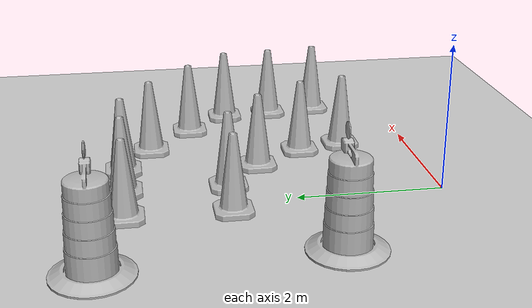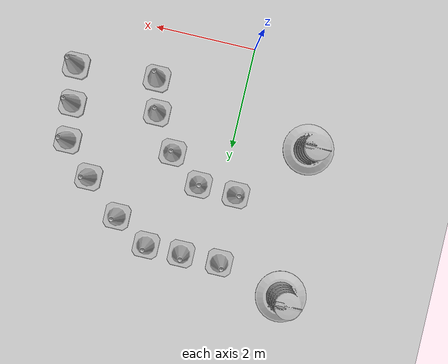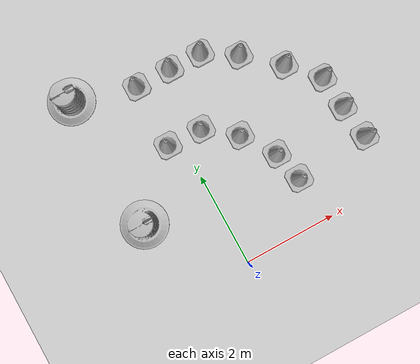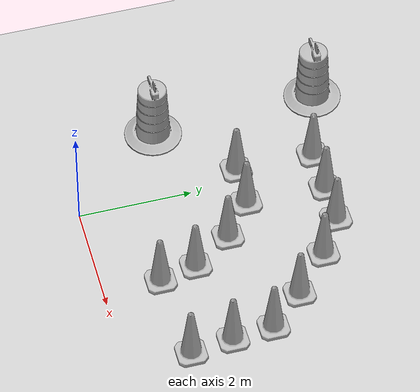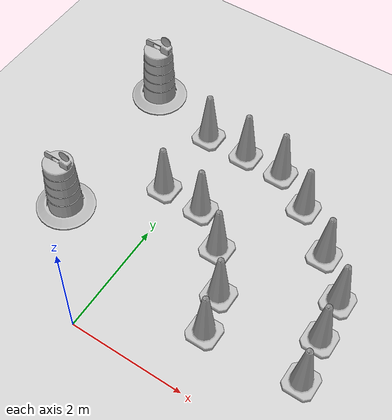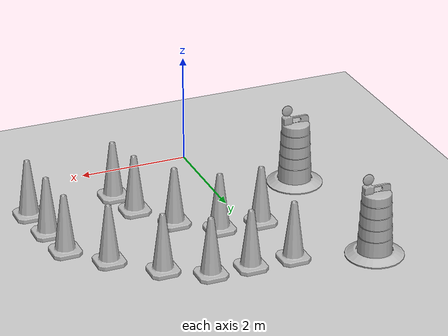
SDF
<sdf version="1.7">
 <world name="default">
  <light name="sun" type="directional">
   <pose>0 0 10 0 -0 0</pose>
   <diffuse>0.8 0.8 0.8 1</diffuse>
   <specular>0.2 0.2 0.2 1</specular>
   <attenuation>
    <range>1000</range>
    <constant>0.9</constant>
    <linear>0.01</linear>
    <quadratic>0.001</quadratic>
   </attenuation>
   <direction>-0.5 0.1 -0.9</direction>
   <spot><inner_angle>0</inner_angle><outer_angle>0</outer_angle><falloff>0</falloff></spot>
  </light>
  <model name="ground_plane">
   <static>1</static>
   <link name="link">
    <collision name="collision">
     <geometry><plane><normal>0 0 1</normal><size>100 100</size></plane></geometry>
     <surface>
      <contact><collide_bitmask>65535</collide_bitmask></contact>
      <friction><ode><mu>100</mu><mu2>50</mu2></ode></friction>
     </surface>
    </collision>
    <visual name="visual">
     <cast_shadows>0</cast_shadows>
     <geometry><plane><normal>0 0 1</normal><size>100 100</size></plane></geometry>
     <material>
      <script><uri>file://media/materials/scripts/gazebo.material</uri><name>Gazebo/Grey</name></script>
     </material>
    </visual>
   </link>
  </model>
  <gravity>0 0 -9.8</gravity>
  <magnetic_field>6e-06 2.3e-05 -4.2e-05</magnetic_field>
  <atmosphere type="adiabatic"/>
  <physics type="ode">
   <max_step_size>0.001</max_step_size>
   <real_time_factor>1</real_time_factor>
   <real_time_update_rate>1000</real_time_update_rate>
  </physics>
  <scene><ambient>0.4 0.4 0.4 1</ambient><background>0.7 0.7 0.7 1</background><shadows>1</shadows></scene>
  <audio><device>default</device></audio>
  <spherical_coordinates>
   <surface_model>EARTH_WGS84</surface_model>
   <latitude_deg>0</latitude_deg>
   <longitude_deg>0</longitude_deg>
   <elevation>0</elevation>
   <heading_deg>0</heading_deg>
  </spherical_coordinates>
  <model name="Construction Cone">
   <link name="link">
    <collision name="collision">
     <geometry>
      <mesh><scale>10 10 10</scale><uri>model://construction_cone/meshes/construction_cone.dae</uri></mesh>
     </geometry>
    </collision>
    <visual name="visual">
     <geometry>
      <mesh><scale>10 10 10</scale><uri>model://construction_cone/meshes/construction_cone.dae</uri></mesh>
     </geometry>
    </visual>
    <inertial>
     <inertia><ixx>1</ixx><ixy>0</ixy><ixz>0</ixz><iyy>1</iyy><iyz>0</iyz><izz>1</izz></inertia>
     <mass>1</mass>
    </inertial>
   </link>
   <pose>0.510071 4.27842 -0 0 -0 0</pose>
  </model>
  <model name="Construction Cone_0">
   <link name="link">
    <collision name="collision">
     <geometry>
      <mesh><scale>10 10 10</scale><uri>model://construction_cone/meshes/construction_cone.dae</uri></mesh>
     </geometry>
    </collision>
    <visual name="visual">
     <geometry>
      <mesh><scale>10 10 10</scale><uri>model://construction_cone/meshes/construction_cone.dae</uri></mesh>
     </geometry>
    </visual>
    <inertial>
     <inertia><ixx>1</ixx><ixy>0</ixy><ixz>0</ixz><iyy>1</iyy><iyz>0</iyz><izz>1</izz></inertia>
     <mass>1</mass>
    </inertial>
   </link>
   <pose>-0.269242 4.27913 -0 0 -1e-06 0</pose>
  </model>
  <model name="Construction Barrel">
   <link name="link">
    <inertial>
     <pose>0 0 0.4 0 -0 0</pose>
     <mass>500</mass>
     <inertia><ixx>51.2096</ixx><iyy>51.2096</iyy><izz>25</izz><ixy>0</ixy><ixz>0</ixz><iyz>0</iyz></inertia>
    </inertial>
    <collision name="collision">
     <geometry><mesh><uri>model://construction_barrel/meshes/construction_barrel.dae</uri></mesh></geometry>
    </collision>
    <visual name="visual">
     <geometry><mesh><uri>model://construction_barrel/meshes/construction_barrel.dae</uri></mesh></geometry>
    </visual>
   </link>
   <pose>-1.60873 4.66114 -2e-06 -7e-06 -4e-06 -2.7e-05</pose>
  </model>
  <model name="Construction Cone_0_clone">
   <link name="link">
    <collision name="collision">
     <geometry>
      <mesh><scale>10 10 10</scale><uri>model://construction_cone/meshes/construction_cone.dae</uri></mesh>
     </geometry>
    </collision>
    <visual name="visual">
     <geometry>
      <mesh><scale>10 10 10</scale><uri>model://construction_cone/meshes/construction_cone.dae</uri></mesh>
     </geometry>
    </visual>
    <inertial>
     <inertia><ixx>1</ixx><ixy>0</ixy><ixz>0</ixz><iyy>1</iyy><iyz>0</iyz><izz>1</izz></inertia>
     <mass>1</mass>
    </inertial>
   </link>
   <pose>1.22623 4.26596 -0 1e-06 -0 0</pose>
  </model>
  <model name="Construction Cone_0_clone_0">
   <link name="link">
    <collision name="collision">
     <geometry>
      <mesh><scale>10 10 10</scale><uri>model://construction_cone/meshes/construction_cone.dae</uri></mesh>
     </geometry>
    </collision>
    <visual name="visual">
     <geometry>
      <mesh><scale>10 10 10</scale><uri>model://construction_cone/meshes/construction_cone.dae</uri></mesh>
     </geometry>
    </visual>
    <inertial>
     <inertia><ixx>1</ixx><ixy>0</ixy><ixz>0</ixz><iyy>1</iyy><iyz>0</iyz><izz>1</izz></inertia>
     <mass>1</mass>
    </inertial>
   </link>
   <pose>1.91306 3.84141 -0 0 -0 0</pose>
  </model>
  <model name="Construction Cone_0_clone_1">
   <link name="link">
    <collision name="collision">
     <geometry>
      <mesh><scale>10 10 10</scale><uri>model://construction_cone/meshes/construction_cone.dae</uri></mesh>
     </geometry>
    </collision>
    <visual name="visual">
     <geometry>
      <mesh><scale>10 10 10</scale><uri>model://construction_cone/meshes/construction_cone.dae</uri></mesh>
     </geometry>
    </visual>
    <inertial>
     <inertia><ixx>1</ixx><ixy>0</ixy><ixz>0</ixz><iyy>1</iyy><iyz>0</iyz><izz>1</izz></inertia>
     <mass>1</mass>
    </inertial>
   </link>
   <pose>2.63651 3.20736 -0 0 -0 0</pose>
  </model>
  <model name="Construction Cone_0_clone_2">
   <link name="link">
    <collision name="collision">
     <geometry>
      <mesh><scale>10 10 10</scale><uri>model://construction_cone/meshes/construction_cone.dae</uri></mesh>
     </geometry>
    </collision>
    <visual name="visual">
     <geometry>
      <mesh><scale>10 10 10</scale><uri>model://construction_cone/meshes/construction_cone.dae</uri></mesh>
     </geometry>
    </visual>
    <inertial>
     <inertia><ixx>1</ixx><ixy>0</ixy><ixz>0</ixz><iyy>1</iyy><iyz>0</iyz><izz>1</izz></inertia>
     <mass>1</mass>
    </inertial>
   </link>
   <pose>3.20626 2.58827 -0 0 -0 0</pose>
  </model>
  <model name="Construction Cone_0_clone_3">
   <link name="link">
    <collision name="collision">
     <geometry>
      <mesh><scale>10 10 10</scale><uri>model://construction_cone/meshes/construction_cone.dae</uri></mesh>
     </geometry>
    </collision>
    <visual name="visual">
     <geometry>
      <mesh><scale>10 10 10</scale><uri>model://construction_cone/meshes/construction_cone.dae</uri></mesh>
     </geometry>
    </visual>
    <inertial>
     <inertia><ixx>1</ixx><ixy>0</ixy><ixz>0</ixz><iyy>1</iyy><iyz>0</iyz><izz>1</izz></inertia>
     <mass>1</mass>
    </inertial>
   </link>
   <pose>3.27835 1.85993 -0 0 -0 0</pose>
  </model>
  <model name="Construction Cone_0_clone_4">
   <link name="link">
    <collision name="collision">
     <geometry>
      <mesh><scale>10 10 10</scale><uri>model://construction_cone/meshes/construction_cone.dae</uri></mesh>
     </geometry>
    </collision>
    <visual name="visual">
     <geometry>
      <mesh><scale>10 10 10</scale><uri>model://construction_cone/meshes/construction_cone.dae</uri></mesh>
     </geometry>
    </visual>
    <inertial>
     <inertia><ixx>1</ixx><ixy>0</ixy><ixz>0</ixz><iyy>1</iyy><iyz>0</iyz><izz>1</izz></inertia>
     <mass>1</mass>
    </inertial>
   </link>
   <pose>-0.284889 2.89331 -0 0 -1e-06 0</pose>
  </model>
  <model name="Construction Cone_0_clone_5">
   <link name="link">
    <collision name="collision">
     <geometry>
      <mesh><scale>10 10 10</scale><uri>model://construction_cone/meshes/construction_cone.dae</uri></mesh>
     </geometry>
    </collision>
    <visual name="visual">
     <geometry>
      <mesh><scale>10 10 10</scale><uri>model://construction_cone/meshes/construction_cone.dae</uri></mesh>
     </geometry>
    </visual>
    <inertial>
     <inertia><ixx>1</ixx><ixy>0</ixy><ixz>0</ixz><iyy>1</iyy><iyz>0</iyz><izz>1</izz></inertia>
     <mass>1</mass>
    </inertial>
   </link>
   <pose>0.480927 2.86356 -0 0 -0 0</pose>
  </model>
  <model name="Construction Cone_0_clone_6">
   <link name="link">
    <collision name="collision">
     <geometry>
      <mesh><scale>10 10 10</scale><uri>model://construction_cone/meshes/construction_cone.dae</uri></mesh>
     </geometry>
    </collision>
    <visual name="visual">
     <geometry>
      <mesh><scale>10 10 10</scale><uri>model://construction_cone/meshes/construction_cone.dae</uri></mesh>
     </geometry>
    </visual>
    <inertial>
     <inertia><ixx>1</ixx><ixy>0</ixy><ixz>0</ixz><iyy>1</iyy><iyz>0</iyz><izz>1</izz></inertia>
     <mass>1</mass>
    </inertial>
   </link>
   <pose>1.12339 2.36049 -0 0 -0 0</pose>
  </model>
  <model name="Construction Cone_0_clone_7">
   <link name="link">
    <collision name="collision">
     <geometry>
      <mesh><scale>10 10 10</scale><uri>model://construction_cone/meshes/construction_cone.dae</uri></mesh>
     </geometry>
    </collision>
    <visual name="visual">
     <geometry>
      <mesh><scale>10 10 10</scale><uri>model://construction_cone/meshes/construction_cone.dae</uri></mesh>
     </geometry>
    </visual>
    <inertial>
     <inertia><ixx>1</ixx><ixy>0</ixy><ixz>0</ixz><iyy>1</iyy><iyz>0</iyz><izz>1</izz></inertia>
     <mass>1</mass>
    </inertial>
   </link>
   <pose>1.59942 1.65897 0 -0 -0 -0</pose>
  </model>
  <model name="Construction Cone_0_clone_8">
   <link name="link">
    <collision name="collision">
     <geometry>
      <mesh><scale>10 10 10</scale><uri>model://construction_cone/meshes/construction_cone.dae</uri></mesh>
     </geometry>
    </collision>
    <visual name="visual">
     <geometry>
      <mesh><scale>10 10 10</scale><uri>model://construction_cone/meshes/construction_cone.dae</uri></mesh>
     </geometry>
    </visual>
    <inertial>
     <inertia><ixx>1</ixx><ixy>0</ixy><ixz>0</ixz><iyy>1</iyy><iyz>0</iyz><izz>1</izz></inertia>
     <mass>1</mass>
    </inertial>
   </link>
   <pose>1.75814 1.00064 -0 0 -0 0</pose>
  </model>
  <model name="Construction Cone_0_clone_9">
   <link name="link">
    <collision name="collision">
     <geometry>
      <mesh><scale>10 10 10</scale><uri>model://construction_cone/meshes/construction_cone.dae</uri></mesh>
     </geometry>
    </collision>
    <visual name="visual">
     <geometry>
      <mesh><scale>10 10 10</scale><uri>model://construction_cone/meshes/construction_cone.dae</uri></mesh>
     </geometry>
    </visual>
    <inertial>
     <inertia><ixx>1</ixx><ixy>0</ixy><ixz>0</ixz><iyy>1</iyy><iyz>0</iyz><izz>1</izz></inertia>
     <mass>1</mass>
    </inertial>
   </link>
   <pose>3.37445 1.11111 -0 0 -0 0</pose>
  </model>
  <model name="Construction Barrel_clone">
   <link name="link">
    <inertial>
     <pose>0 0 0.4 0 -0 0</pose>
     <mass>500</mass>
     <inertia><ixx>51.2096</ixx><iyy>51.2096</iyy><izz>25</izz><ixy>0</ixy><ixz>0</ixz><iyz>0</iyz></inertia>
    </inertial>
    <collision name="collision">
     <geometry><mesh><uri>model://construction_barrel/meshes/construction_barrel.dae</uri></mesh></geometry>
    </collision>
    <visual name="visual">
     <geometry><mesh><uri>model://construction_barrel/meshes/construction_barrel.dae</uri></mesh></geometry>
    </visual>
   </link>
   <pose>-1.48612 1.69728 -1e-06 0 5e-06 -3.2e-05</pose>
  </model>
 </world>
</sdf>
